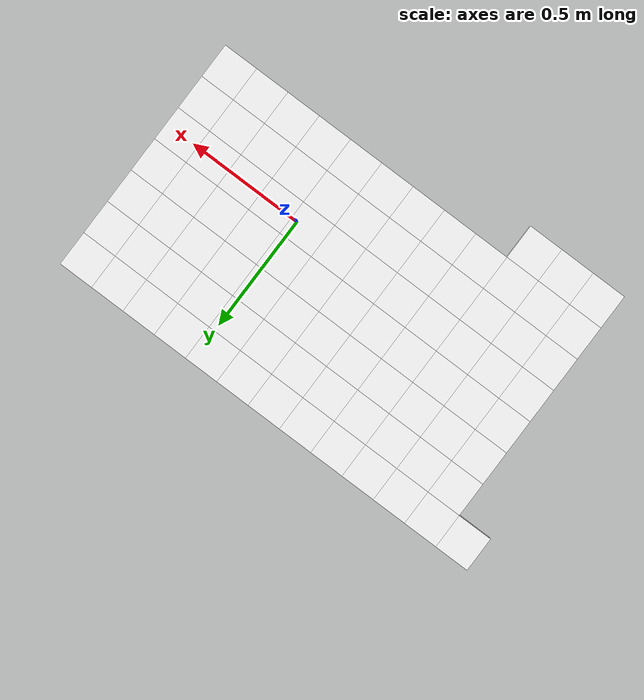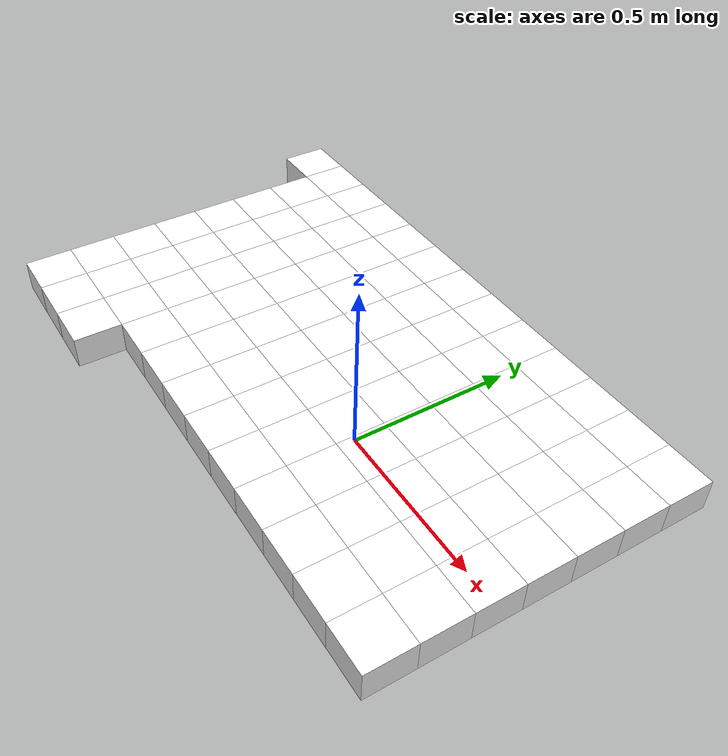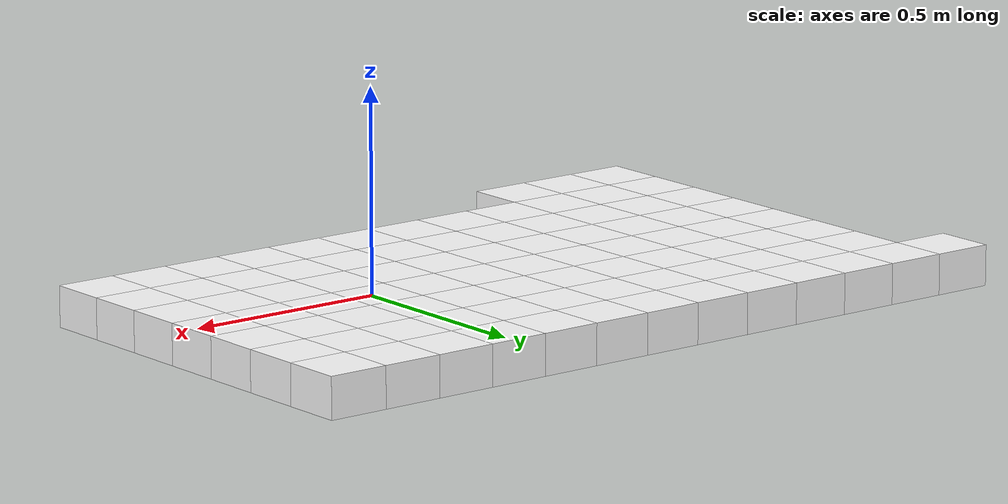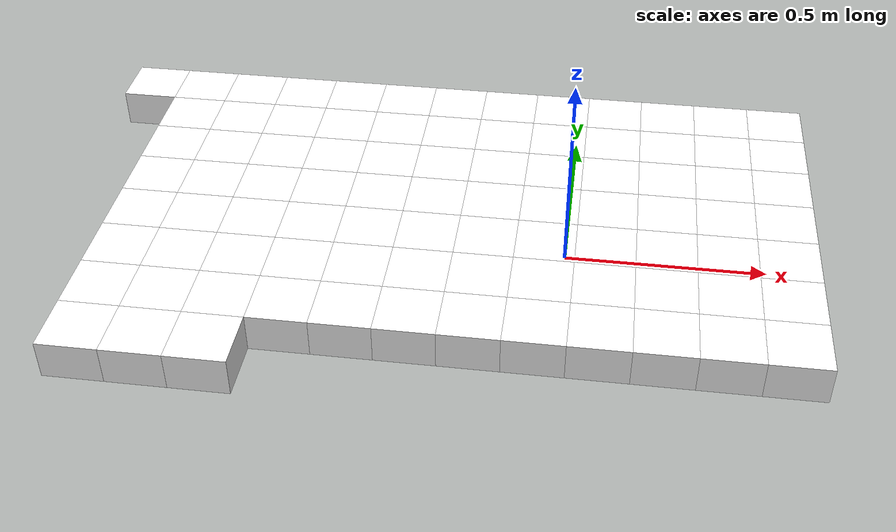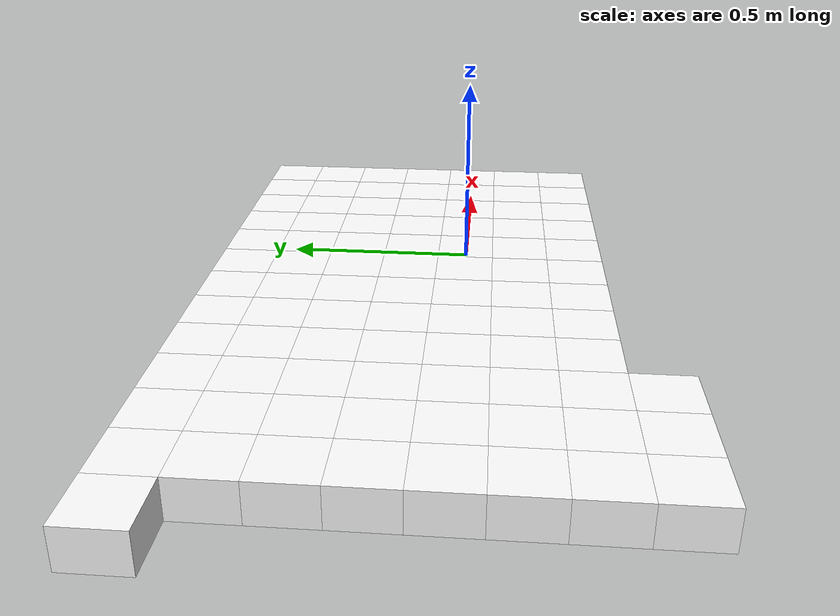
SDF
<sdf version="1.7">
 <world name="default">
  <include><uri>model://sun</uri></include>
  <model name="static_environment">
   <static>true</static>
   <link name="region_100">
    <pose>-1.2500000029690659 0.5999332647115706 0.0 0.0 0.0 4.7123</pose>
    <collision name="region_100_collision">
     <geometry><box><size>0.15 0.15 0.1</size></box></geometry>
     <surface><friction><ode><mu>1.0</mu><mu2>1.0</mu2></ode></friction></surface>
    </collision>
    <visual name="region_100_visual">
     <geometry><box><size>0.15 0.15 0.1</size></box></geometry>
     <material><ambient>1.0 1.0 1.0 1.0</ambient><diffuse>1.0 1.0 1.0 1.0</diffuse></material>
    </visual>
   </link>
   <link name="region_120">
    <pose>-1.100000003562879 0.5999199176538847 0.0 0.0 0.0 4.7123</pose>
    <collision name="region_120_collision">
     <geometry><box><size>0.15 0.15 0.1</size></box></geometry>
     <surface><friction><ode><mu>1.0</mu><mu2>1.0</mu2></ode></friction></surface>
    </collision>
    <visual name="region_120_visual">
     <geometry><box><size>0.15 0.15 0.1</size></box></geometry>
     <material><ambient>1.0 1.0 1.0 1.0</ambient><diffuse>1.0 1.0 1.0 1.0</diffuse></material>
    </visual>
   </link>
   <link name="region_121">
    <pose>-1.1000133506205647 0.4499199182476979 0.0 0.0 0.0 4.7123</pose>
    <collision name="region_121_collision">
     <geometry><box><size>0.15 0.15 0.1</size></box></geometry>
     <surface><friction><ode><mu>1.0</mu><mu2>1.0</mu2></ode></friction></surface>
    </collision>
    <visual name="region_121_visual">
     <geometry><box><size>0.15 0.15 0.1</size></box></geometry>
     <material><ambient>1.0 1.0 1.0 1.0</ambient><diffuse>1.0 1.0 1.0 1.0</diffuse></material>
    </visual>
   </link>
   <link name="region_122">
    <pose>-1.1000266976782507 0.2999199188415111 0.0 0.0 0.0 4.7123</pose>
    <collision name="region_122_collision">
     <geometry><box><size>0.15 0.15 0.1</size></box></geometry>
     <surface><friction><ode><mu>1.0</mu><mu2>1.0</mu2></ode></friction></surface>
    </collision>
    <visual name="region_122_visual">
     <geometry><box><size>0.15 0.15 0.1</size></box></geometry>
     <material><ambient>1.0 1.0 1.0 1.0</ambient><diffuse>1.0 1.0 1.0 1.0</diffuse></material>
    </visual>
   </link>
   <link name="region_123">
    <pose>-1.1000400447359366 0.1499199194353243 0.0 0.0 0.0 4.7123</pose>
    <collision name="region_123_collision">
     <geometry><box><size>0.15 0.15 0.1</size></box></geometry>
     <surface><friction><ode><mu>1.0</mu><mu2>1.0</mu2></ode></friction></surface>
    </collision>
    <visual name="region_123_visual">
     <geometry><box><size>0.15 0.15 0.1</size></box></geometry>
     <material><ambient>1.0 1.0 1.0 1.0</ambient><diffuse>1.0 1.0 1.0 1.0</diffuse></material>
    </visual>
   </link>
   <link name="region_124">
    <pose>-1.1000533917936224 -8.007997086256768e-05 0.0 0.0 0.0 4.7123</pose>
    <collision name="region_124_collision">
     <geometry><box><size>0.15 0.15 0.1</size></box></geometry>
     <surface><friction><ode><mu>1.0</mu><mu2>1.0</mu2></ode></friction></surface>
    </collision>
    <visual name="region_124_visual">
     <geometry><box><size>0.15 0.15 0.1</size></box></geometry>
     <material><ambient>1.0 1.0 1.0 1.0</ambient><diffuse>1.0 1.0 1.0 1.0</diffuse></material>
    </visual>
   </link>
   <link name="region_125">
    <pose>-1.1000667388513083 -0.15008007937704937 0.0 0.0 0.0 4.7123</pose>
    <collision name="region_125_collision">
     <geometry><box><size>0.15 0.15 0.1</size></box></geometry>
     <surface><friction><ode><mu>1.0</mu><mu2>1.0</mu2></ode></friction></surface>
    </collision>
    <visual name="region_125_visual">
     <geometry><box><size>0.15 0.15 0.1</size></box></geometry>
     <material><ambient>1.0 1.0 1.0 1.0</ambient><diffuse>1.0 1.0 1.0 1.0</diffuse></material>
    </visual>
   </link>
   <link name="region_126">
    <pose>-1.1000800859089943 -0.3000800787832363 0.0 0.0 0.0 4.7123</pose>
    <collision name="region_126_collision">
     <geometry><box><size>0.15 0.15 0.1</size></box></geometry>
     <surface><friction><ode><mu>1.0</mu><mu2>1.0</mu2></ode></friction></surface>
    </collision>
    <visual name="region_126_visual">
     <geometry><box><size>0.15 0.15 0.1</size></box></geometry>
     <material><ambient>1.0 1.0 1.0 1.0</ambient><diffuse>1.0 1.0 1.0 1.0</diffuse></material>
    </visual>
   </link>
   <link name="region_127">
    <pose>-1.10009343296668 -0.4500800781894233 0.0 0.0 0.0 4.7123</pose>
    <collision name="region_127_collision">
     <geometry><box><size>0.15 0.15 0.1</size></box></geometry>
     <surface><friction><ode><mu>1.0</mu><mu2>1.0</mu2></ode></friction></surface>
    </collision>
    <visual name="region_127_visual">
     <geometry><box><size>0.15 0.15 0.1</size></box></geometry>
     <material><ambient>1.0 1.0 1.0 1.0</ambient><diffuse>1.0 1.0 1.0 1.0</diffuse></material>
    </visual>
   </link>
   <link name="region_140">
    <pose>-0.9500000041566921 0.5999065705961989 0.0 0.0 0.0 4.7123</pose>
    <collision name="region_140_collision">
     <geometry><box><size>0.15 0.15 0.1</size></box></geometry>
     <surface><friction><ode><mu>1.0</mu><mu2>1.0</mu2></ode></friction></surface>
    </collision>
    <visual name="region_140_visual">
     <geometry><box><size>0.15 0.15 0.1</size></box></geometry>
     <material><ambient>1.0 1.0 1.0 1.0</ambient><diffuse>1.0 1.0 1.0 1.0</diffuse></material>
    </visual>
   </link>
   <link name="region_141">
    <pose>-0.950013351214378 0.449906571190012 0.0 0.0 0.0 4.7123</pose>
    <collision name="region_141_collision">
     <geometry><box><size>0.15 0.15 0.1</size></box></geometry>
     <surface><friction><ode><mu>1.0</mu><mu2>1.0</mu2></ode></friction></surface>
    </collision>
    <visual name="region_141_visual">
     <geometry><box><size>0.15 0.15 0.1</size></box></geometry>
     <material><ambient>1.0 1.0 1.0 1.0</ambient><diffuse>1.0 1.0 1.0 1.0</diffuse></material>
    </visual>
   </link>
   <link name="region_142">
    <pose>-0.9500266982720638 0.2999065717838252 0.0 0.0 0.0 4.7123</pose>
    <collision name="region_142_collision">
     <geometry><box><size>0.15 0.15 0.1</size></box></geometry>
     <surface><friction><ode><mu>1.0</mu><mu2>1.0</mu2></ode></friction></surface>
    </collision>
    <visual name="region_142_visual">
     <geometry><box><size>0.15 0.15 0.1</size></box></geometry>
     <material><ambient>1.0 1.0 1.0 1.0</ambient><diffuse>1.0 1.0 1.0 1.0</diffuse></material>
    </visual>
   </link>
   <link name="region_143">
    <pose>-0.9500400453297497 0.14990657237763838 0.0 0.0 0.0 4.7123</pose>
    <collision name="region_143_collision">
     <geometry><box><size>0.15 0.15 0.1</size></box></geometry>
     <surface><friction><ode><mu>1.0</mu><mu2>1.0</mu2></ode></friction></surface>
    </collision>
    <visual name="region_143_visual">
     <geometry><box><size>0.15 0.15 0.1</size></box></geometry>
     <material><ambient>1.0 1.0 1.0 1.0</ambient><diffuse>1.0 1.0 1.0 1.0</diffuse></material>
    </visual>
   </link>
   <link name="region_144">
    <pose>-0.9500533923874355 -9.342702854842067e-05 0.0 0.0 0.0 4.7123</pose>
    <collision name="region_144_collision">
     <geometry><box><size>0.15 0.15 0.1</size></box></geometry>
     <surface><friction><ode><mu>1.0</mu><mu2>1.0</mu2></ode></friction></surface>
    </collision>
    <visual name="region_144_visual">
     <geometry><box><size>0.15 0.15 0.1</size></box></geometry>
     <material><ambient>1.0 1.0 1.0 1.0</ambient><diffuse>1.0 1.0 1.0 1.0</diffuse></material>
    </visual>
   </link>
   <link name="region_145">
    <pose>-0.9500667394451214 -0.15009342643473522 0.0 0.0 0.0 4.7123</pose>
    <collision name="region_145_collision">
     <geometry><box><size>0.15 0.15 0.1</size></box></geometry>
     <surface><friction><ode><mu>1.0</mu><mu2>1.0</mu2></ode></friction></surface>
    </collision>
    <visual name="region_145_visual">
     <geometry><box><size>0.15 0.15 0.1</size></box></geometry>
     <material><ambient>1.0 1.0 1.0 1.0</ambient><diffuse>1.0 1.0 1.0 1.0</diffuse></material>
    </visual>
   </link>
   <link name="region_146">
    <pose>-0.9500800865028074 -0.30009342584092213 0.0 0.0 0.0 4.7123</pose>
    <collision name="region_146_collision">
     <geometry><box><size>0.15 0.15 0.1</size></box></geometry>
     <surface><friction><ode><mu>1.0</mu><mu2>1.0</mu2></ode></friction></surface>
    </collision>
    <visual name="region_146_visual">
     <geometry><box><size>0.15 0.15 0.1</size></box></geometry>
     <material><ambient>1.0 1.0 1.0 1.0</ambient><diffuse>1.0 1.0 1.0 1.0</diffuse></material>
    </visual>
   </link>
   <link name="region_147">
    <pose>-0.9500934335604931 -0.45009342524710905 0.0 0.0 0.0 4.7123</pose>
    <collision name="region_147_collision">
     <geometry><box><size>0.15 0.15 0.1</size></box></geometry>
     <surface><friction><ode><mu>1.0</mu><mu2>1.0</mu2></ode></friction></surface>
    </collision>
    <visual name="region_147_visual">
     <geometry><box><size>0.15 0.15 0.1</size></box></geometry>
     <material><ambient>1.0 1.0 1.0 1.0</ambient><diffuse>1.0 1.0 1.0 1.0</diffuse></material>
    </visual>
   </link>
   <link name="region_160">
    <pose>-0.8000000047505054 0.5998932235385129 0.0 0.0 0.0 4.7123</pose>
    <collision name="region_160_collision">
     <geometry><box><size>0.15 0.15 0.1</size></box></geometry>
     <surface><friction><ode><mu>1.0</mu><mu2>1.0</mu2></ode></friction></surface>
    </collision>
    <visual name="region_160_visual">
     <geometry><box><size>0.15 0.15 0.1</size></box></geometry>
     <material><ambient>1.0 1.0 1.0 1.0</ambient><diffuse>1.0 1.0 1.0 1.0</diffuse></material>
    </visual>
   </link>
   <link name="region_161">
    <pose>-0.8000133518081913 0.44989322413232613 0.0 0.0 0.0 4.7123</pose>
    <collision name="region_161_collision">
     <geometry><box><size>0.15 0.15 0.1</size></box></geometry>
     <surface><friction><ode><mu>1.0</mu><mu2>1.0</mu2></ode></friction></surface>
    </collision>
    <visual name="region_161_visual">
     <geometry><box><size>0.15 0.15 0.1</size></box></geometry>
     <material><ambient>1.0 1.0 1.0 1.0</ambient><diffuse>1.0 1.0 1.0 1.0</diffuse></material>
    </visual>
   </link>
   <link name="region_162">
    <pose>-0.8000266988658771 0.29989322472613933 0.0 0.0 0.0 4.7123</pose>
    <collision name="region_162_collision">
     <geometry><box><size>0.15 0.15 0.1</size></box></geometry>
     <surface><friction><ode><mu>1.0</mu><mu2>1.0</mu2></ode></friction></surface>
    </collision>
    <visual name="region_162_visual">
     <geometry><box><size>0.15 0.15 0.1</size></box></geometry>
     <material><ambient>1.0 1.0 1.0 1.0</ambient><diffuse>1.0 1.0 1.0 1.0</diffuse></material>
    </visual>
   </link>
   <link name="region_163">
    <pose>-0.800040045923563 0.14989322531995253 0.0 0.0 0.0 4.7123</pose>
    <collision name="region_163_collision">
     <geometry><box><size>0.15 0.15 0.1</size></box></geometry>
     <surface><friction><ode><mu>1.0</mu><mu2>1.0</mu2></ode></friction></surface>
    </collision>
    <visual name="region_163_visual">
     <geometry><box><size>0.15 0.15 0.1</size></box></geometry>
     <material><ambient>1.0 1.0 1.0 1.0</ambient><diffuse>1.0 1.0 1.0 1.0</diffuse></material>
    </visual>
   </link>
   <link name="region_164">
    <pose>-0.8000533929812488 -0.00010677408623438467 0.0 0.0 0.0 4.7123</pose>
    <collision name="region_164_collision">
     <geometry><box><size>0.15 0.15 0.1</size></box></geometry>
     <surface><friction><ode><mu>1.0</mu><mu2>1.0</mu2></ode></friction></surface>
    </collision>
    <visual name="region_164_visual">
     <geometry><box><size>0.15 0.15 0.1</size></box></geometry>
     <material><ambient>1.0 1.0 1.0 1.0</ambient><diffuse>1.0 1.0 1.0 1.0</diffuse></material>
    </visual>
   </link>
   <link name="region_165">
    <pose>-0.8000667400389347 -0.15010677349242119 0.0 0.0 0.0 4.7123</pose>
    <collision name="region_165_collision">
     <geometry><box><size>0.15 0.15 0.1</size></box></geometry>
     <surface><friction><ode><mu>1.0</mu><mu2>1.0</mu2></ode></friction></surface>
    </collision>
    <visual name="region_165_visual">
     <geometry><box><size>0.15 0.15 0.1</size></box></geometry>
     <material><ambient>1.0 1.0 1.0 1.0</ambient><diffuse>1.0 1.0 1.0 1.0</diffuse></material>
    </visual>
   </link>
   <link name="region_166">
    <pose>-0.8000800870966207 -0.3001067728986081 0.0 0.0 0.0 4.7123</pose>
    <collision name="region_166_collision">
     <geometry><box><size>0.15 0.15 0.1</size></box></geometry>
     <surface><friction><ode><mu>1.0</mu><mu2>1.0</mu2></ode></friction></surface>
    </collision>
    <visual name="region_166_visual">
     <geometry><box><size>0.15 0.15 0.1</size></box></geometry>
     <material><ambient>1.0 1.0 1.0 1.0</ambient><diffuse>1.0 1.0 1.0 1.0</diffuse></material>
    </visual>
   </link>
   <link name="region_167">
    <pose>-0.8000934341543064 -0.450106772304795 0.0 0.0 0.0 4.7123</pose>
    <collision name="region_167_collision">
     <geometry><box><size>0.15 0.15 0.1</size></box></geometry>
     <surface><friction><ode><mu>1.0</mu><mu2>1.0</mu2></ode></friction></surface>
    </collision>
    <visual name="region_167_visual">
     <geometry><box><size>0.15 0.15 0.1</size></box></geometry>
     <material><ambient>1.0 1.0 1.0 1.0</ambient><diffuse>1.0 1.0 1.0 1.0</diffuse></material>
    </visual>
   </link>
   <link name="region_180">
    <pose>-0.6500000053443187 0.5998798764808271 0.0 0.0 0.0 4.7123</pose>
    <collision name="region_180_collision">
     <geometry><box><size>0.15 0.15 0.1</size></box></geometry>
     <surface><friction><ode><mu>1.0</mu><mu2>1.0</mu2></ode></friction></surface>
    </collision>
    <visual name="region_180_visual">
     <geometry><box><size>0.15 0.15 0.1</size></box></geometry>
     <material><ambient>1.0 1.0 1.0 1.0</ambient><diffuse>1.0 1.0 1.0 1.0</diffuse></material>
    </visual>
   </link>
   <link name="region_181">
    <pose>-0.6500133524020046 0.4498798770746403 0.0 0.0 0.0 4.7123</pose>
    <collision name="region_181_collision">
     <geometry><box><size>0.15 0.15 0.1</size></box></geometry>
     <surface><friction><ode><mu>1.0</mu><mu2>1.0</mu2></ode></friction></surface>
    </collision>
    <visual name="region_181_visual">
     <geometry><box><size>0.15 0.15 0.1</size></box></geometry>
     <material><ambient>1.0 1.0 1.0 1.0</ambient><diffuse>1.0 1.0 1.0 1.0</diffuse></material>
    </visual>
   </link>
   <link name="region_182">
    <pose>-0.6500266994596904 0.2998798776684534 0.0 0.0 0.0 4.7123</pose>
    <collision name="region_182_collision">
     <geometry><box><size>0.15 0.15 0.1</size></box></geometry>
     <surface><friction><ode><mu>1.0</mu><mu2>1.0</mu2></ode></friction></surface>
    </collision>
    <visual name="region_182_visual">
     <geometry><box><size>0.15 0.15 0.1</size></box></geometry>
     <material><ambient>1.0 1.0 1.0 1.0</ambient><diffuse>1.0 1.0 1.0 1.0</diffuse></material>
    </visual>
   </link>
   <link name="region_183">
    <pose>-0.6500400465173763 0.14987987826226662 0.0 0.0 0.0 4.7123</pose>
    <collision name="region_183_collision">
     <geometry><box><size>0.15 0.15 0.1</size></box></geometry>
     <surface><friction><ode><mu>1.0</mu><mu2>1.0</mu2></ode></friction></surface>
    </collision>
    <visual name="region_183_visual">
     <geometry><box><size>0.15 0.15 0.1</size></box></geometry>
     <material><ambient>1.0 1.0 1.0 1.0</ambient><diffuse>1.0 1.0 1.0 1.0</diffuse></material>
    </visual>
   </link>
   <link name="region_184">
    <pose>-0.6500533935750621 -0.00012012114392023765 0.0 0.0 0.0 4.7123</pose>
    <collision name="region_184_collision">
     <geometry><box><size>0.15 0.15 0.1</size></box></geometry>
     <surface><friction><ode><mu>1.0</mu><mu2>1.0</mu2></ode></friction></surface>
    </collision>
    <visual name="region_184_visual">
     <geometry><box><size>0.15 0.15 0.1</size></box></geometry>
     <material><ambient>1.0 1.0 1.0 1.0</ambient><diffuse>1.0 1.0 1.0 1.0</diffuse></material>
    </visual>
   </link>
   <link name="region_185">
    <pose>-0.650066740632748 -0.15012012055010704 0.0 0.0 0.0 4.7123</pose>
    <collision name="region_185_collision">
     <geometry><box><size>0.15 0.15 0.1</size></box></geometry>
     <surface><friction><ode><mu>1.0</mu><mu2>1.0</mu2></ode></friction></surface>
    </collision>
    <visual name="region_185_visual">
     <geometry><box><size>0.15 0.15 0.1</size></box></geometry>
     <material><ambient>1.0 1.0 1.0 1.0</ambient><diffuse>1.0 1.0 1.0 1.0</diffuse></material>
    </visual>
   </link>
   <link name="region_186">
    <pose>-0.650080087690434 -0.30012011995629395 0.0 0.0 0.0 4.7123</pose>
    <collision name="region_186_collision">
     <geometry><box><size>0.15 0.15 0.1</size></box></geometry>
     <surface><friction><ode><mu>1.0</mu><mu2>1.0</mu2></ode></friction></surface>
    </collision>
    <visual name="region_186_visual">
     <geometry><box><size>0.15 0.15 0.1</size></box></geometry>
     <material><ambient>1.0 1.0 1.0 1.0</ambient><diffuse>1.0 1.0 1.0 1.0</diffuse></material>
    </visual>
   </link>
   <link name="region_200">
    <pose>-0.5000000059381318 0.5998665294231412 0.0 0.0 0.0 4.7123</pose>
    <collision name="region_200_collision">
     <geometry><box><size>0.15 0.15 0.1</size></box></geometry>
     <surface><friction><ode><mu>1.0</mu><mu2>1.0</mu2></ode></friction></surface>
    </collision>
    <visual name="region_200_visual">
     <geometry><box><size>0.15 0.15 0.1</size></box></geometry>
     <material><ambient>1.0 1.0 1.0 1.0</ambient><diffuse>1.0 1.0 1.0 1.0</diffuse></material>
    </visual>
   </link>
   <link name="region_201">
    <pose>-0.5000133529958177 0.4498665300169544 0.0 0.0 0.0 4.7123</pose>
    <collision name="region_201_collision">
     <geometry><box><size>0.15 0.15 0.1</size></box></geometry>
     <surface><friction><ode><mu>1.0</mu><mu2>1.0</mu2></ode></friction></surface>
    </collision>
    <visual name="region_201_visual">
     <geometry><box><size>0.15 0.15 0.1</size></box></geometry>
     <material><ambient>1.0 1.0 1.0 1.0</ambient><diffuse>1.0 1.0 1.0 1.0</diffuse></material>
    </visual>
   </link>
   <link name="region_202">
    <pose>-0.5000267000535035 0.29986653061076757 0.0 0.0 0.0 4.7123</pose>
    <collision name="region_202_collision">
     <geometry><box><size>0.15 0.15 0.1</size></box></geometry>
     <surface><friction><ode><mu>1.0</mu><mu2>1.0</mu2></ode></friction></surface>
    </collision>
    <visual name="region_202_visual">
     <geometry><box><size>0.15 0.15 0.1</size></box></geometry>
     <material><ambient>1.0 1.0 1.0 1.0</ambient><diffuse>1.0 1.0 1.0 1.0</diffuse></material>
    </visual>
   </link>
   <link name="region_203">
    <pose>-0.5000400471111894 0.14986653120458077 0.0 0.0 0.0 4.7123</pose>
    <collision name="region_203_collision">
     <geometry><box><size>0.15 0.15 0.1</size></box></geometry>
     <surface><friction><ode><mu>1.0</mu><mu2>1.0</mu2></ode></friction></surface>
    </collision>
    <visual name="region_203_visual">
     <geometry><box><size>0.15 0.15 0.1</size></box></geometry>
     <material><ambient>1.0 1.0 1.0 1.0</ambient><diffuse>1.0 1.0 1.0 1.0</diffuse></material>
    </visual>
   </link>
   <link name="region_204">
    <pose>-0.5000533941688752 -0.00013346820160609063 0.0 0.0 0.0 4.7123</pose>
    <collision name="region_204_collision">
     <geometry><box><size>0.15 0.15 0.1</size></box></geometry>
     <surface><friction><ode><mu>1.0</mu><mu2>1.0</mu2></ode></friction></surface>
    </collision>
    <visual name="region_204_visual">
     <geometry><box><size>0.15 0.15 0.1</size></box></geometry>
     <material><ambient>1.0 1.0 1.0 1.0</ambient><diffuse>1.0 1.0 1.0 1.0</diffuse></material>
    </visual>
   </link>
   <link name="region_205">
    <pose>-0.5000667412265611 -0.1501334676077929 0.0 0.0 0.0 4.7123</pose>
    <collision name="region_205_collision">
     <geometry><box><size>0.15 0.15 0.1</size></box></geometry>
     <surface><friction><ode><mu>1.0</mu><mu2>1.0</mu2></ode></friction></surface>
    </collision>
    <visual name="region_205_visual">
     <geometry><box><size>0.15 0.15 0.1</size></box></geometry>
     <material><ambient>1.0 1.0 1.0 1.0</ambient><diffuse>1.0 1.0 1.0 1.0</diffuse></material>
    </visual>
   </link>
   <link name="region_206">
    <pose>-0.5000800882842471 -0.3001334670139798 0.0 0.0 0.0 4.7123</pose>
    <collision name="region_206_collision">
     <geometry><box><size>0.15 0.15 0.1</size></box></geometry>
     <surface><friction><ode><mu>1.0</mu><mu2>1.0</mu2></ode></friction></surface>
    </collision>
    <visual name="region_206_visual">
     <geometry><box><size>0.15 0.15 0.1</size></box></geometry>
     <material><ambient>1.0 1.0 1.0 1.0</ambient><diffuse>1.0 1.0 1.0 1.0</diffuse></material>
    </visual>
   </link>
   <link name="region_220">
    <pose>-0.3500000065319451 0.5998531823654554 0.0 0.0 0.0 4.7123</pose>
    <collision name="region_220_collision">
     <geometry><box><size>0.15 0.15 0.1</size></box></geometry>
     <surface><friction><ode><mu>1.0</mu><mu2>1.0</mu2></ode></friction></surface>
    </collision>
    <visual name="region_220_visual">
     <geometry><box><size>0.15 0.15 0.1</size></box></geometry>
     <material><ambient>1.0 1.0 1.0 1.0</ambient><diffuse>1.0 1.0 1.0 1.0</diffuse></material>
    </visual>
   </link>
   <link name="region_221">
    <pose>-0.35001335358963104 0.4498531829592685 0.0 0.0 0.0 4.7123</pose>
    <collision name="region_221_collision">
     <geometry><box><size>0.15 0.15 0.1</size></box></geometry>
     <surface><friction><ode><mu>1.0</mu><mu2>1.0</mu2></ode></friction></surface>
    </collision>
    <visual name="region_221_visual">
     <geometry><box><size>0.15 0.15 0.1</size></box></geometry>
     <material><ambient>1.0 1.0 1.0 1.0</ambient><diffuse>1.0 1.0 1.0 1.0</diffuse></material>
    </visual>
   </link>
   <link name="region_222">
    <pose>-0.3500267006473168 0.29985318355308166 0.0 0.0 0.0 4.7123</pose>
    <collision name="region_222_collision">
     <geometry><box><size>0.15 0.15 0.1</size></box></geometry>
     <surface><friction><ode><mu>1.0</mu><mu2>1.0</mu2></ode></friction></surface>
    </collision>
    <visual name="region_222_visual">
     <geometry><box><size>0.15 0.15 0.1</size></box></geometry>
     <material><ambient>1.0 1.0 1.0 1.0</ambient><diffuse>1.0 1.0 1.0 1.0</diffuse></material>
    </visual>
   </link>
   <link name="region_223">
    <pose>-0.35004004770500274 0.14985318414689486 0.0 0.0 0.0 4.7123</pose>
    <collision name="region_223_collision">
     <geometry><box><size>0.15 0.15 0.1</size></box></geometry>
     <surface><friction><ode><mu>1.0</mu><mu2>1.0</mu2></ode></friction></surface>
    </collision>
    <visual name="region_223_visual">
     <geometry><box><size>0.15 0.15 0.1</size></box></geometry>
     <material><ambient>1.0 1.0 1.0 1.0</ambient><diffuse>1.0 1.0 1.0 1.0</diffuse></material>
    </visual>
   </link>
   <link name="region_224">
    <pose>-0.3500533947626885 -0.0001468152592919436 0.0 0.0 0.0 4.7123</pose>
    <collision name="region_224_collision">
     <geometry><box><size>0.15 0.15 0.1</size></box></geometry>
     <surface><friction><ode><mu>1.0</mu><mu2>1.0</mu2></ode></friction></surface>
    </collision>
    <visual name="region_224_visual">
     <geometry><box><size>0.15 0.15 0.1</size></box></geometry>
     <material><ambient>1.0 1.0 1.0 1.0</ambient><diffuse>1.0 1.0 1.0 1.0</diffuse></material>
    </visual>
   </link>
   <link name="region_225">
    <pose>-0.35006674182037445 -0.15014681466547874 0.0 0.0 0.0 4.7123</pose>
    <collision name="region_225_collision">
     <geometry><box><size>0.15 0.15 0.1</size></box></geometry>
     <surface><friction><ode><mu>1.0</mu><mu2>1.0</mu2></ode></friction></surface>
    </collision>
    <visual name="region_225_visual">
     <geometry><box><size>0.15 0.15 0.1</size></box></geometry>
     <material><ambient>1.0 1.0 1.0 1.0</ambient><diffuse>1.0 1.0 1.0 1.0</diffuse></material>
    </visual>
   </link>
   <link name="region_226">
    <pose>-0.3500800888780604 -0.30014681407166566 0.0 0.0 0.0 4.7123</pose>
    <collision name="region_226_collision">
     <geometry><box><size>0.15 0.15 0.1</size></box></geometry>
     <surface><friction><ode><mu>1.0</mu><mu2>1.0</mu2></ode></friction></surface>
    </collision>
    <visual name="region_226_visual">
     <geometry><box><size>0.15 0.15 0.1</size></box></geometry>
     <material><ambient>1.0 1.0 1.0 1.0</ambient><diffuse>1.0 1.0 1.0 1.0</diffuse></material>
    </visual>
   </link>
   <link name="region_240">
    <pose>-0.20000000712575838 0.5998398353077695 0.0 0.0 0.0 4.7123</pose>
    <collision name="region_240_collision">
     <geometry><box><size>0.15 0.15 0.1</size></box></geometry>
     <surface><friction><ode><mu>1.0</mu><mu2>1.0</mu2></ode></friction></surface>
    </collision>
    <visual name="region_240_visual">
     <geometry><box><size>0.15 0.15 0.1</size></box></geometry>
     <material><ambient>1.0 1.0 1.0 1.0</ambient><diffuse>1.0 1.0 1.0 1.0</diffuse></material>
    </visual>
   </link>
   <link name="region_241">
    <pose>-0.20001335418344435 0.4498398359015826 0.0 0.0 0.0 4.7123</pose>
    <collision name="region_241_collision">
     <geometry><box><size>0.15 0.15 0.1</size></box></geometry>
     <surface><friction><ode><mu>1.0</mu><mu2>1.0</mu2></ode></friction></surface>
    </collision>
    <visual name="region_241_visual">
     <geometry><box><size>0.15 0.15 0.1</size></box></geometry>
     <material><ambient>1.0 1.0 1.0 1.0</ambient><diffuse>1.0 1.0 1.0 1.0</diffuse></material>
    </visual>
   </link>
   <link name="region_242">
    <pose>-0.2000267012411301 0.2998398364953958 0.0 0.0 0.0 4.7123</pose>
    <collision name="region_242_collision">
     <geometry><box><size>0.15 0.15 0.1</size></box></geometry>
     <surface><friction><ode><mu>1.0</mu><mu2>1.0</mu2></ode></friction></surface>
    </collision>
    <visual name="region_242_visual">
     <geometry><box><size>0.15 0.15 0.1</size></box></geometry>
     <material><ambient>1.0 1.0 1.0 1.0</ambient><diffuse>1.0 1.0 1.0 1.0</diffuse></material>
    </visual>
   </link>
   <link name="region_243">
    <pose>-0.20004004829881605 0.149839837089209 0.0 0.0 0.0 4.7123</pose>
    <collision name="region_243_collision">
     <geometry><box><size>0.15 0.15 0.1</size></box></geometry>
     <surface><friction><ode><mu>1.0</mu><mu2>1.0</mu2></ode></friction></surface>
    </collision>
    <visual name="region_243_visual">
     <geometry><box><size>0.15 0.15 0.1</size></box></geometry>
     <material><ambient>1.0 1.0 1.0 1.0</ambient><diffuse>1.0 1.0 1.0 1.0</diffuse></material>
    </visual>
   </link>
   <link name="region_244">
    <pose>-0.2000533953565018 -0.0001601623169777966 0.0 0.0 0.0 4.7123</pose>
    <collision name="region_244_collision">
     <geometry><box><size>0.15 0.15 0.1</size></box></geometry>
     <surface><friction><ode><mu>1.0</mu><mu2>1.0</mu2></ode></friction></surface>
    </collision>
    <visual name="region_244_visual">
     <geometry><box><size>0.15 0.15 0.1</size></box></geometry>
     <material><ambient>1.0 1.0 1.0 1.0</ambient><diffuse>1.0 1.0 1.0 1.0</diffuse></material>
    </visual>
   </link>
   <link name="region_245">
    <pose>-0.20006674241418776 -0.1501601617231646 0.0 0.0 0.0 4.7123</pose>
    <collision name="region_245_collision">
     <geometry><box><size>0.15 0.15 0.1</size></box></geometry>
     <surface><friction><ode><mu>1.0</mu><mu2>1.0</mu2></ode></friction></surface>
    </collision>
    <visual name="region_245_visual">
     <geometry><box><size>0.15 0.15 0.1</size></box></geometry>
     <material><ambient>1.0 1.0 1.0 1.0</ambient><diffuse>1.0 1.0 1.0 1.0</diffuse></material>
    </visual>
   </link>
   <link name="region_246">
    <pose>-0.20008008947187372 -0.3001601611293515 0.0 0.0 0.0 4.7123</pose>
    <collision name="region_246_collision">
     <geometry><box><size>0.15 0.15 0.1</size></box></geometry>
     <surface><friction><ode><mu>1.0</mu><mu2>1.0</mu2></ode></friction></surface>
    </collision>
    <visual name="region_246_visual">
     <geometry><box><size>0.15 0.15 0.1</size></box></geometry>
     <material><ambient>1.0 1.0 1.0 1.0</ambient><diffuse>1.0 1.0 1.0 1.0</diffuse></material>
    </visual>
   </link>
   <link name="region_260">
    <pose>-0.05000000771957169 0.5998264882500836 0.0 0.0 0.0 4.7123</pose>
    <collision name="region_260_collision">
     <geometry><box><size>0.15 0.15 0.1</size></box></geometry>
     <surface><friction><ode><mu>1.0</mu><mu2>1.0</mu2></ode></friction></surface>
    </collision>
    <visual name="region_260_visual">
     <geometry><box><size>0.15 0.15 0.1</size></box></geometry>
     <material><ambient>1.0 1.0 1.0 1.0</ambient><diffuse>1.0 1.0 1.0 1.0</diffuse></material>
    </visual>
   </link>
   <link name="region_261">
    <pose>-0.05001335477725766 0.44982648884389675 0.0 0.0 0.0 4.7123</pose>
    <collision name="region_261_collision">
     <geometry><box><size>0.15 0.15 0.1</size></box></geometry>
     <surface><friction><ode><mu>1.0</mu><mu2>1.0</mu2></ode></friction></surface>
    </collision>
    <visual name="region_261_visual">
     <geometry><box><size>0.15 0.15 0.1</size></box></geometry>
     <material><ambient>1.0 1.0 1.0 1.0</ambient><diffuse>1.0 1.0 1.0 1.0</diffuse></material>
    </visual>
   </link>
   <link name="region_262">
    <pose>-0.0500267018349434 0.29982648943770995 0.0 0.0 0.0 4.7123</pose>
    <collision name="region_262_collision">
     <geometry><box><size>0.15 0.15 0.1</size></box></geometry>
     <surface><friction><ode><mu>1.0</mu><mu2>1.0</mu2></ode></friction></surface>
    </collision>
    <visual name="region_262_visual">
     <geometry><box><size>0.15 0.15 0.1</size></box></geometry>
     <material><ambient>1.0 1.0 1.0 1.0</ambient><diffuse>1.0 1.0 1.0 1.0</diffuse></material>
    </visual>
   </link>
   <link name="region_263">
    <pose>-0.05004004889262936 0.14982649003152315 0.0 0.0 0.0 4.7123</pose>
    <collision name="region_263_collision">
     <geometry><box><size>0.15 0.15 0.1</size></box></geometry>
     <surface><friction><ode><mu>1.0</mu><mu2>1.0</mu2></ode></friction></surface>
    </collision>
    <visual name="region_263_visual">
     <geometry><box><size>0.15 0.15 0.1</size></box></geometry>
     <material><ambient>1.0 1.0 1.0 1.0</ambient><diffuse>1.0 1.0 1.0 1.0</diffuse></material>
    </visual>
   </link>
   <link name="region_264">
    <pose>-0.050053395950315105 -0.0001735093746637606 0.0 0.0 0.0 4.7123</pose>
    <collision name="region_264_collision">
     <geometry><box><size>0.15 0.15 0.1</size></box></geometry>
     <surface><friction><ode><mu>1.0</mu><mu2>1.0</mu2></ode></friction></surface>
    </collision>
    <visual name="region_264_visual">
     <geometry><box><size>0.15 0.15 0.1</size></box></geometry>
     <material><ambient>1.0 1.0 1.0 1.0</ambient><diffuse>1.0 1.0 1.0 1.0</diffuse></material>
    </visual>
   </link>
   <link name="region_265">
    <pose>-0.05006674300800107 -0.15017350878085056 0.0 0.0 0.0 4.7123</pose>
    <collision name="region_265_collision">
     <geometry><box><size>0.15 0.15 0.1</size></box></geometry>
     <surface><friction><ode><mu>1.0</mu><mu2>1.0</mu2></ode></friction></surface>
    </collision>
    <visual name="region_265_visual">
     <geometry><box><size>0.15 0.15 0.1</size></box></geometry>
     <material><ambient>1.0 1.0 1.0 1.0</ambient><diffuse>1.0 1.0 1.0 1.0</diffuse></material>
    </visual>
   </link>
   <link name="region_266">
    <pose>-0.05008009006568703 -0.3001735081870375 0.0 0.0 0.0 4.7123</pose>
    <collision name="region_266_collision">
     <geometry><box><size>0.15 0.15 0.1</size></box></geometry>
     <surface><friction><ode><mu>1.0</mu><mu2>1.0</mu2></ode></friction></surface>
    </collision>
    <visual name="region_266_visual">
     <geometry><box><size>0.15 0.15 0.1</size></box></geometry>
     <material><ambient>1.0 1.0 1.0 1.0</ambient><diffuse>1.0 1.0 1.0 1.0</diffuse></material>
    </visual>
   </link>
   <link name="region_280">
    <pose>0.09999999168661544 0.5998131411923977 0.0 0.0 0.0 4.7123</pose>
    <collision name="region_280_collision">
     <geometry><box><size>0.15 0.15 0.1</size></box></geometry>
     <surface><friction><ode><mu>1.0</mu><mu2>1.0</mu2></ode></friction></surface>
    </collision>
    <visual name="region_280_visual">
     <geometry><box><size>0.15 0.15 0.1</size></box></geometry>
     <material><ambient>1.0 1.0 1.0 1.0</ambient><diffuse>1.0 1.0 1.0 1.0</diffuse></material>
    </visual>
   </link>
   <link name="region_281">
    <pose>0.0999866446289297 0.4498131417862109 0.0 0.0 0.0 4.7123</pose>
    <collision name="region_281_collision">
     <geometry><box><size>0.15 0.15 0.1</size></box></geometry>
     <surface><friction><ode><mu>1.0</mu><mu2>1.0</mu2></ode></friction></surface>
    </collision>
    <visual name="region_281_visual">
     <geometry><box><size>0.15 0.15 0.1</size></box></geometry>
     <material><ambient>1.0 1.0 1.0 1.0</ambient><diffuse>1.0 1.0 1.0 1.0</diffuse></material>
    </visual>
   </link>
   <link name="region_282">
    <pose>0.09997329757124351 0.29981314238002404 0.0 0.0 0.0 4.7123</pose>
    <collision name="region_282_collision">
     <geometry><box><size>0.15 0.15 0.1</size></box></geometry>
     <surface><friction><ode><mu>1.0</mu><mu2>1.0</mu2></ode></friction></surface>
    </collision>
    <visual name="region_282_visual">
     <geometry><box><size>0.15 0.15 0.1</size></box></geometry>
     <material><ambient>1.0 1.0 1.0 1.0</ambient><diffuse>1.0 1.0 1.0 1.0</diffuse></material>
    </visual>
   </link>
   <link name="region_283">
    <pose>0.09995995051355777 0.14981314297383724 0.0 0.0 0.0 4.7123</pose>
    <collision name="region_283_collision">
     <geometry><box><size>0.15 0.15 0.1</size></box></geometry>
     <surface><friction><ode><mu>1.0</mu><mu2>1.0</mu2></ode></friction></surface>
    </collision>
    <visual name="region_283_visual">
     <geometry><box><size>0.15 0.15 0.1</size></box></geometry>
     <material><ambient>1.0 1.0 1.0 1.0</ambient><diffuse>1.0 1.0 1.0 1.0</diffuse></material>
    </visual>
   </link>
   <link name="region_284">
    <pose>0.09994660345587203 -0.00018685643234961358 0.0 0.0 0.0 4.7123</pose>
    <collision name="region_284_collision">
     <geometry><box><size>0.15 0.15 0.1</size></box></geometry>
     <surface><friction><ode><mu>1.0</mu><mu2>1.0</mu2></ode></friction></surface>
    </collision>
    <visual name="region_284_visual">
     <geometry><box><size>0.15 0.15 0.1</size></box></geometry>
     <material><ambient>1.0 1.0 1.0 1.0</ambient><diffuse>1.0 1.0 1.0 1.0</diffuse></material>
    </visual>
   </link>
   <link name="region_285">
    <pose>0.09993325639818584 -0.15018685583853641 0.0 0.0 0.0 4.7123</pose>
    <collision name="region_285_collision">
     <geometry><box><size>0.15 0.15 0.1</size></box></geometry>
     <surface><friction><ode><mu>1.0</mu><mu2>1.0</mu2></ode></friction></surface>
    </collision>
    <visual name="region_285_visual">
     <geometry><box><size>0.15 0.15 0.1</size></box></geometry>
     <material><ambient>1.0 1.0 1.0 1.0</ambient><diffuse>1.0 1.0 1.0 1.0</diffuse></material>
    </visual>
   </link>
   <link name="region_286">
    <pose>0.0999199093405001 -0.3001868552447233 0.0 0.0 0.0 4.7123</pose>
    <collision name="region_286_collision">
     <geometry><box><size>0.15 0.15 0.1</size></box></geometry>
     <surface><friction><ode><mu>1.0</mu><mu2>1.0</mu2></ode></friction></surface>
    </collision>
    <visual name="region_286_visual">
     <geometry><box><size>0.15 0.15 0.1</size></box></geometry>
     <material><ambient>1.0 1.0 1.0 1.0</ambient><diffuse>1.0 1.0 1.0 1.0</diffuse></material>
    </visual>
   </link>
   <link name="region_300">
    <pose>0.2499999910928019 0.5997997941347119 0.0 0.0 0.0 4.7123</pose>
    <collision name="region_300_collision">
     <geometry><box><size>0.15 0.15 0.1</size></box></geometry>
     <surface><friction><ode><mu>1.0</mu><mu2>1.0</mu2></ode></friction></surface>
    </collision>
    <visual name="region_300_visual">
     <geometry><box><size>0.15 0.15 0.1</size></box></geometry>
     <material><ambient>1.0 1.0 1.0 1.0</ambient><diffuse>1.0 1.0 1.0 1.0</diffuse></material>
    </visual>
   </link>
   <link name="region_301">
    <pose>0.24998664403511617 0.44979979472852505 0.0 0.0 0.0 4.7123</pose>
    <collision name="region_301_collision">
     <geometry><box><size>0.15 0.15 0.1</size></box></geometry>
     <surface><friction><ode><mu>1.0</mu><mu2>1.0</mu2></ode></friction></surface>
    </collision>
    <visual name="region_301_visual">
     <geometry><box><size>0.15 0.15 0.1</size></box></geometry>
     <material><ambient>1.0 1.0 1.0 1.0</ambient><diffuse>1.0 1.0 1.0 1.0</diffuse></material>
    </visual>
   </link>
   <link name="region_302">
    <pose>0.24997329697742998 0.2997997953223382 0.0 0.0 0.0 4.7123</pose>
    <collision name="region_302_collision">
     <geometry><box><size>0.15 0.15 0.1</size></box></geometry>
     <surface><friction><ode><mu>1.0</mu><mu2>1.0</mu2></ode></friction></surface>
    </collision>
    <visual name="region_302_visual">
     <geometry><box><size>0.15 0.15 0.1</size></box></geometry>
     <material><ambient>1.0 1.0 1.0 1.0</ambient><diffuse>1.0 1.0 1.0 1.0</diffuse></material>
    </visual>
   </link>
   <link name="region_303">
    <pose>0.24995994991974424 0.1497997959161514 0.0 0.0 0.0 4.7123</pose>
    <collision name="region_303_collision">
     <geometry><box><size>0.15 0.15 0.1</size></box></geometry>
     <surface><friction><ode><mu>1.0</mu><mu2>1.0</mu2></ode></friction></surface>
    </collision>
    <visual name="region_303_visual">
     <geometry><box><size>0.15 0.15 0.1</size></box></geometry>
     <material><ambient>1.0 1.0 1.0 1.0</ambient><diffuse>1.0 1.0 1.0 1.0</diffuse></material>
    </visual>
   </link>
   <link name="region_304">
    <pose>0.2499466028620585 -0.00020020349003546656 0.0 0.0 0.0 4.7123</pose>
    <collision name="region_304_collision">
     <geometry><box><size>0.15 0.15 0.1</size></box></geometry>
     <surface><friction><ode><mu>1.0</mu><mu2>1.0</mu2></ode></friction></surface>
    </collision>
    <visual name="region_304_visual">
     <geometry><box><size>0.15 0.15 0.1</size></box></geometry>
     <material><ambient>1.0 1.0 1.0 1.0</ambient><diffuse>1.0 1.0 1.0 1.0</diffuse></material>
    </visual>
   </link>
   <link name="region_305">
    <pose>0.2499332558043723 -0.15020020289622227 0.0 0.0 0.0 4.7123</pose>
    <collision name="region_305_collision">
     <geometry><box><size>0.15 0.15 0.1</size></box></geometry>
     <surface><friction><ode><mu>1.0</mu><mu2>1.0</mu2></ode></friction></surface>
    </collision>
    <visual name="region_305_visual">
     <geometry><box><size>0.15 0.15 0.1</size></box></geometry>
     <material><ambient>1.0 1.0 1.0 1.0</ambient><diffuse>1.0 1.0 1.0 1.0</diffuse></material>
    </visual>
   </link>
   <link name="region_306">
    <pose>0.24991990874668657 -0.3002002023024092 0.0 0.0 0.0 4.7123</pose>
    <collision name="region_306_collision">
     <geometry><box><size>0.15 0.15 0.1</size></box></geometry>
     <surface><friction><ode><mu>1.0</mu><mu2>1.0</mu2></ode></friction></surface>
    </collision>
    <visual name="region_306_visual">
     <geometry><box><size>0.15 0.15 0.1</size></box></geometry>
     <material><ambient>1.0 1.0 1.0 1.0</ambient><diffuse>1.0 1.0 1.0 1.0</diffuse></material>
    </visual>
   </link>
   <link name="region_320">
    <pose>0.3999999904989888 0.599786447077026 0.0 0.0 0.0 4.7123</pose>
    <collision name="region_320_collision">
     <geometry><box><size>0.15 0.15 0.1</size></box></geometry>
     <surface><friction><ode><mu>1.0</mu><mu2>1.0</mu2></ode></friction></surface>
    </collision>
    <visual name="region_320_visual">
     <geometry><box><size>0.15 0.15 0.1</size></box></geometry>
     <material><ambient>1.0 1.0 1.0 1.0</ambient><diffuse>1.0 1.0 1.0 1.0</diffuse></material>
    </visual>
   </link>
   <link name="region_321">
    <pose>0.3999866434413031 0.44978644767083914 0.0 0.0 0.0 4.7123</pose>
    <collision name="region_321_collision">
     <geometry><box><size>0.15 0.15 0.1</size></box></geometry>
     <surface><friction><ode><mu>1.0</mu><mu2>1.0</mu2></ode></friction></surface>
    </collision>
    <visual name="region_321_visual">
     <geometry><box><size>0.15 0.15 0.1</size></box></geometry>
     <material><ambient>1.0 1.0 1.0 1.0</ambient><diffuse>1.0 1.0 1.0 1.0</diffuse></material>
    </visual>
   </link>
   <link name="region_322">
    <pose>0.3999732963836169 0.2997864482646523 0.0 0.0 0.0 4.7123</pose>
    <collision name="region_322_collision">
     <geometry><box><size>0.15 0.15 0.1</size></box></geometry>
     <surface><friction><ode><mu>1.0</mu><mu2>1.0</mu2></ode></friction></surface>
    </collision>
    <visual name="region_322_visual">
     <geometry><box><size>0.15 0.15 0.1</size></box></geometry>
     <material><ambient>1.0 1.0 1.0 1.0</ambient><diffuse>1.0 1.0 1.0 1.0</diffuse></material>
    </visual>
   </link>
   <link name="region_323">
    <pose>0.39995994932593115 0.14978644885846548 0.0 0.0 0.0 4.7123</pose>
    <collision name="region_323_collision">
     <geometry><box><size>0.15 0.15 0.1</size></box></geometry>
     <surface><friction><ode><mu>1.0</mu><mu2>1.0</mu2></ode></friction></surface>
    </collision>
    <visual name="region_323_visual">
     <geometry><box><size>0.15 0.15 0.1</size></box></geometry>
     <material><ambient>1.0 1.0 1.0 1.0</ambient><diffuse>1.0 1.0 1.0 1.0</diffuse></material>
    </visual>
   </link>
   <link name="region_324">
    <pose>0.3999466022682454 -0.00021355054772131954 0.0 0.0 0.0 4.7123</pose>
    <collision name="region_324_collision">
     <geometry><box><size>0.15 0.15 0.1</size></box></geometry>
     <surface><friction><ode><mu>1.0</mu><mu2>1.0</mu2></ode></friction></surface>
    </collision>
    <visual name="region_324_visual">
     <geometry><box><size>0.15 0.15 0.1</size></box></geometry>
     <material><ambient>1.0 1.0 1.0 1.0</ambient><diffuse>1.0 1.0 1.0 1.0</diffuse></material>
    </visual>
   </link>
   <link name="region_325">
    <pose>0.3999332552105592 -0.15021354995390812 0.0 0.0 0.0 4.7123</pose>
    <collision name="region_325_collision">
     <geometry><box><size>0.15 0.15 0.1</size></box></geometry>
     <surface><friction><ode><mu>1.0</mu><mu2>1.0</mu2></ode></friction></surface>
    </collision>
    <visual name="region_325_visual">
     <geometry><box><size>0.15 0.15 0.1</size></box></geometry>
     <material><ambient>1.0 1.0 1.0 1.0</ambient><diffuse>1.0 1.0 1.0 1.0</diffuse></material>
    </visual>
   </link>
   <link name="region_326">
    <pose>0.3999199081528735 -0.30021354936009503 0.0 0.0 0.0 4.7123</pose>
    <collision name="region_326_collision">
     <geometry><box><size>0.15 0.15 0.1</size></box></geometry>
     <surface><friction><ode><mu>1.0</mu><mu2>1.0</mu2></ode></friction></surface>
    </collision>
    <visual name="region_326_visual">
     <geometry><box><size>0.15 0.15 0.1</size></box></geometry>
     <material><ambient>1.0 1.0 1.0 1.0</ambient><diffuse>1.0 1.0 1.0 1.0</diffuse></material>
    </visual>
   </link>
   <link name="region_340">
    <pose>0.5499999899051757 0.59977310001934 0.0 0.0 0.0 4.7123</pose>
    <collision name="region_340_collision">
     <geometry><box><size>0.15 0.15 0.1</size></box></geometry>
     <surface><friction><ode><mu>1.0</mu><mu2>1.0</mu2></ode></friction></surface>
    </collision>
    <visual name="region_340_visual">
     <geometry><box><size>0.15 0.15 0.1</size></box></geometry>
     <material><ambient>1.0 1.0 1.0 1.0</ambient><diffuse>1.0 1.0 1.0 1.0</diffuse></material>
    </visual>
   </link>
   <link name="region_341">
    <pose>0.54998664284749 0.44977310061315323 0.0 0.0 0.0 4.7123</pose>
    <collision name="region_341_collision">
     <geometry><box><size>0.15 0.15 0.1</size></box></geometry>
     <surface><friction><ode><mu>1.0</mu><mu2>1.0</mu2></ode></friction></surface>
    </collision>
    <visual name="region_341_visual">
     <geometry><box><size>0.15 0.15 0.1</size></box></geometry>
     <material><ambient>1.0 1.0 1.0 1.0</ambient><diffuse>1.0 1.0 1.0 1.0</diffuse></material>
    </visual>
   </link>
   <link name="region_342">
    <pose>0.5499732957898038 0.29977310120696643 0.0 0.0 0.0 4.7123</pose>
    <collision name="region_342_collision">
     <geometry><box><size>0.15 0.15 0.1</size></box></geometry>
     <surface><friction><ode><mu>1.0</mu><mu2>1.0</mu2></ode></friction></surface>
    </collision>
    <visual name="region_342_visual">
     <geometry><box><size>0.15 0.15 0.1</size></box></geometry>
     <material><ambient>1.0 1.0 1.0 1.0</ambient><diffuse>1.0 1.0 1.0 1.0</diffuse></material>
    </visual>
   </link>
   <link name="region_343">
    <pose>0.5499599487321181 0.14977310180077963 0.0 0.0 0.0 4.7123</pose>
    <collision name="region_343_collision">
     <geometry><box><size>0.15 0.15 0.1</size></box></geometry>
     <surface><friction><ode><mu>1.0</mu><mu2>1.0</mu2></ode></friction></surface>
    </collision>
    <visual name="region_343_visual">
     <geometry><box><size>0.15 0.15 0.1</size></box></geometry>
     <material><ambient>1.0 1.0 1.0 1.0</ambient><diffuse>1.0 1.0 1.0 1.0</diffuse></material>
    </visual>
   </link>
   <link name="region_344">
    <pose>0.5499466016744323 -0.00022689760540728354 0.0 0.0 0.0 4.7123</pose>
    <collision name="region_344_collision">
     <geometry><box><size>0.15 0.15 0.1</size></box></geometry>
     <surface><friction><ode><mu>1.0</mu><mu2>1.0</mu2></ode></friction></surface>
    </collision>
    <visual name="region_344_visual">
     <geometry><box><size>0.15 0.15 0.1</size></box></geometry>
     <material><ambient>1.0 1.0 1.0 1.0</ambient><diffuse>1.0 1.0 1.0 1.0</diffuse></material>
    </visual>
   </link>
   <link name="region_345">
    <pose>0.5499332546167461 -0.15022689701159408 0.0 0.0 0.0 4.7123</pose>
    <collision name="region_345_collision">
     <geometry><box><size>0.15 0.15 0.1</size></box></geometry>
     <surface><friction><ode><mu>1.0</mu><mu2>1.0</mu2></ode></friction></surface>
    </collision>
    <visual name="region_345_visual">
     <geometry><box><size>0.15 0.15 0.1</size></box></geometry>
     <material><ambient>1.0 1.0 1.0 1.0</ambient><diffuse>1.0 1.0 1.0 1.0</diffuse></material>
    </visual>
   </link>
   <link name="region_346">
    <pose>0.5499199075590604 -0.300226896417781 0.0 0.0 0.0 4.7123</pose>
    <collision name="region_346_collision">
     <geometry><box><size>0.15 0.15 0.1</size></box></geometry>
     <surface><friction><ode><mu>1.0</mu><mu2>1.0</mu2></ode></friction></surface>
    </collision>
    <visual name="region_346_visual">
     <geometry><box><size>0.15 0.15 0.1</size></box></geometry>
     <material><ambient>1.0 1.0 1.0 1.0</ambient><diffuse>1.0 1.0 1.0 1.0</diffuse></material>
    </visual>
   </link>
  </model>
 </world>
</sdf>
